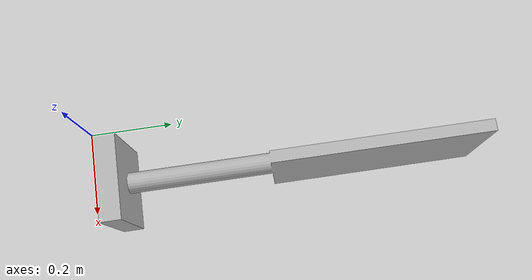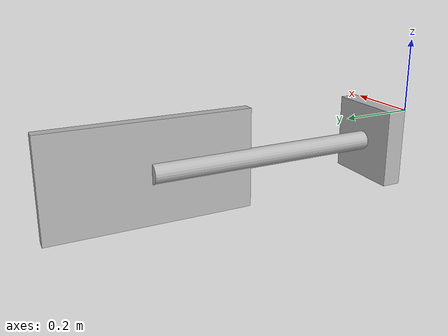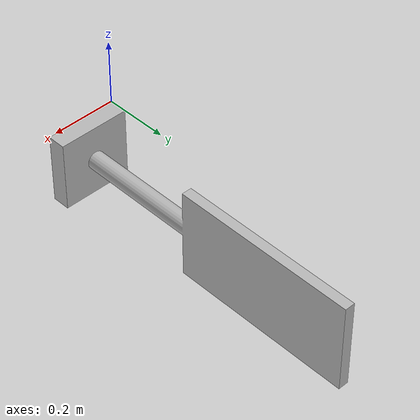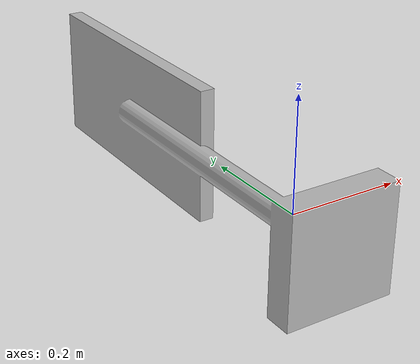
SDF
<?xml version="1.0" ?>
<sdf version="1.6">
  <model name="sign_right_T_intersect">
    <static>true</static>
    <link name="link">
      <collision name="collision">
        <geometry>
          <mesh>
            <pose>0 0 0 0 0 0</pose>

            <scale>4.34593654932638 4.34593654932638 4.34593654932638</scale>
            <uri>model://sign_right_T_intersect/meshes/sign_right_T_intersect.obj</uri>
          </mesh>
        </geometry>
      </collision>
      <visual name="visual">
        <geometry>
          <mesh>
            <pose>0 0 0 0 0 0</pose>
            <scale>4.34593654932638 4.34593654932638 4.34593654932638</scale>

            <uri>model://sign_right_T_intersect/meshes/sign_right_T_intersect.obj</uri>
          </mesh>
        </geometry>
      </visual>
    </link>
  </model>
</sdf>
